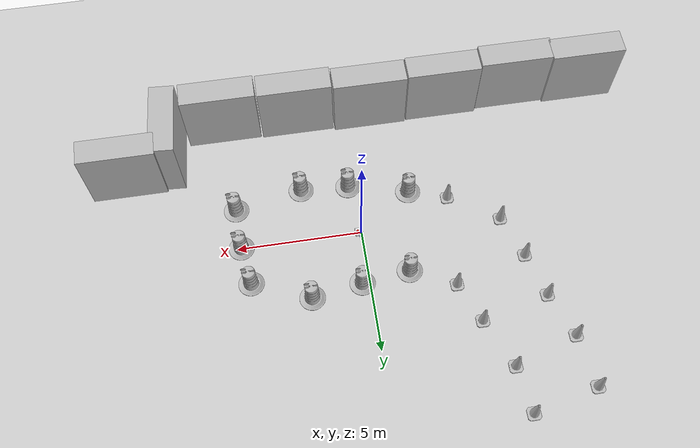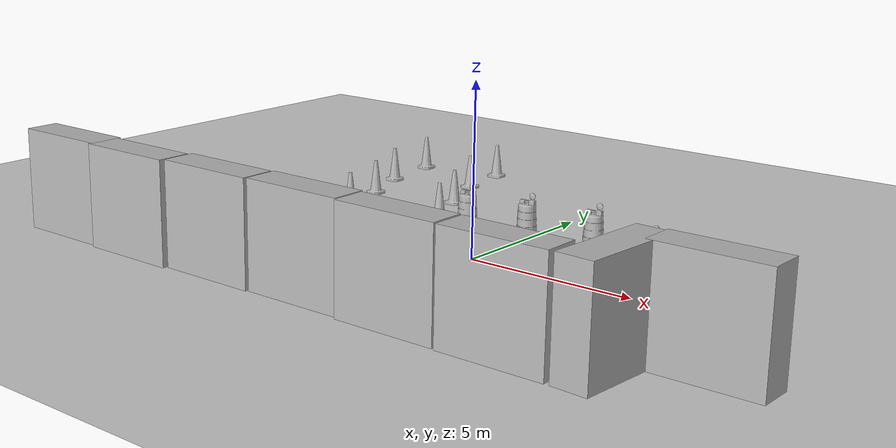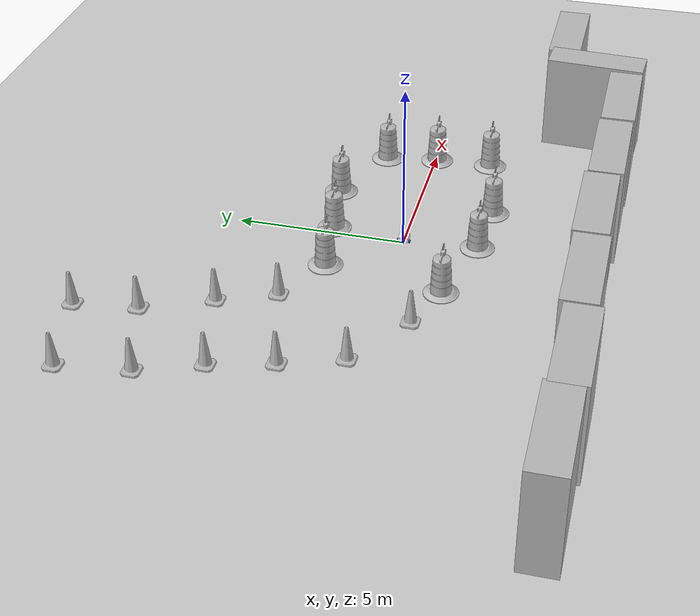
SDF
<sdf version="1.7">
 <world name="default">
  <light name="sun" type="directional">
   <pose>0 0 10 0 -0 0</pose>
   <diffuse>0.8 0.8 0.8 1</diffuse>
   <specular>0.2 0.2 0.2 1</specular>
   <attenuation>
    <range>1000</range>
    <constant>0.9</constant>
    <linear>0.01</linear>
    <quadratic>0.001</quadratic>
   </attenuation>
   <direction>-0.5 0.1 -0.9</direction>
   <spot><inner_angle>0</inner_angle><outer_angle>0</outer_angle><falloff>0</falloff></spot>
  </light>
  <model name="ground_plane">
   <static>1</static>
   <link name="link">
    <collision name="collision">
     <geometry><plane><normal>0 0 1</normal><size>100 100</size></plane></geometry>
     <surface>
      <contact><collide_bitmask>65535</collide_bitmask></contact>
      <friction><ode><mu>100</mu><mu2>50</mu2></ode></friction>
     </surface>
    </collision>
    <visual name="visual">
     <cast_shadows>0</cast_shadows>
     <geometry><plane><normal>0 0 1</normal><size>100 100</size></plane></geometry>
     <material>
      <script><uri>file://media/materials/scripts/gazebo.material</uri><name>Gazebo/Grey</name></script>
     </material>
    </visual>
   </link>
  </model>
  <gravity>0 0 -9.8</gravity>
  <magnetic_field>6e-06 2.3e-05 -4.2e-05</magnetic_field>
  <atmosphere type="adiabatic"/>
  <physics type="ode">
   <max_step_size>0.001</max_step_size>
   <real_time_factor>1</real_time_factor>
   <real_time_update_rate>1000</real_time_update_rate>
  </physics>
  <scene><ambient>0.4 0.4 0.4 1</ambient><background>0.7 0.7 0.7 1</background><shadows>1</shadows></scene>
  <audio><device>default</device></audio>
  <spherical_coordinates>
   <surface_model>EARTH_WGS84</surface_model>
   <latitude_deg>0</latitude_deg>
   <longitude_deg>0</longitude_deg>
   <elevation>0</elevation>
   <heading_deg>0</heading_deg>
  </spherical_coordinates>
  <model name="my_bot">
   <link name="base_link">
    <inertial>
     <pose>0.07 0 0.078571 0 -0 0</pose>
     <mass>0.7</mass>
     <inertia>
      <ixx>0.0064169</ixx>
      <ixy>0</ixy>
      <ixz>0.000225</ixz>
      <iyy>0.0071969</iyy>
      <iyz>0</iyz>
      <izz>0.008505</izz>
     </inertia>
    </inertial>
    <collision name="base_link_fixed_joint_lump__chassis_collision">
     <pose>0.05 0 0.075 0 -0 0</pose>
     <geometry><box><size>0.3 0.3 0.15</size></box></geometry>
    </collision>
    <collision name="base_link_fixed_joint_lump__caster_wheel_collision_1">
     <pose>0.14 0 0 0 -0 0</pose>
     <geometry><sphere><radius>0.05</radius></sphere></geometry>
     <surface><friction><ode><mu>0.001</mu><mu2>0.001</mu2></ode></friction></surface>
    </collision>
    <collision name="base_link_fixed_joint_lump__lidar_frame_collision_2">
     <pose>0.1 0 0.175 0 -0 0</pose>
     <geometry><cylinder><length>0.04</length><radius>0.05</radius></cylinder></geometry>
    </collision>
    <visual name="base_link_fixed_joint_lump__camera_link_visual">
     <pose>0.305 0 0.08 0 -0 0</pose>
     <geometry><box><size>0.01 0.03 0.03</size></box></geometry>
     <material>
      <script><name>Gazebo/Red</name><uri>file://media/materials/scripts/gazebo.material</uri></script>
     </material>
    </visual>
    <visual name="base_link_fixed_joint_lump__chassis_visual_1">
     <pose>0.05 0 0.075 0 -0 0</pose>
     <geometry><box><size>0.3 0.3 0.15</size></box></geometry>
     <material>
      <script><name>Gazebo/White</name><uri>file://media/materials/scripts/gazebo.material</uri></script>
     </material>
    </visual>
    <visual name="base_link_fixed_joint_lump__caster_wheel_visual_2">
     <pose>0.14 0 0 0 -0 0</pose>
     <geometry><sphere><radius>0.05</radius></sphere></geometry>
     <material>
      <script><name>Gazebo/Black</name><uri>file://media/materials/scripts/gazebo.material</uri></script>
     </material>
    </visual>
    <visual name="base_link_fixed_joint_lump__lidar_frame_visual_3">
     <pose>0.1 0 0.175 0 -0 0</pose>
     <geometry><cylinder><length>0.04</length><radius>0.05</radius></cylinder></geometry>
     <material>
      <script><name>Gazebo/Red</name><uri>file://media/materials/scripts/gazebo.material</uri></script>
     </material>
    </visual>
    <sensor name="camera" type="camera">
     <visualize>1</visualize>
     <update_rate>10</update_rate>
     <camera>
      <horizontal_fov>1.089</horizontal_fov>
      <image><format>R8G8B8</format><width>640</width><height>480</height></image>
      <clip><near>0.05</near><far>8</far></clip>
     </camera>
     <plugin name="camera_controller" filename="libgazebo_ros_camera.so">
      <frame_name>camera_link_optical</frame_name>
     </plugin>
     <pose>0.305 0 0.08 0 -0 0</pose>
    </sensor>
    <sensor name="laser" type="ray">
     <visualize>1</visualize>
     <update_rate>10</update_rate>
     <ray>
      <scan>
       <horizontal>
        <samples>360</samples>
        <resolution>1</resolution>
        <min_angle>-3.14159</min_angle>
        <max_angle>3.14159</max_angle>
       </horizontal>
       <vertical><samples>1</samples><min_angle>0</min_angle><max_angle>0</max_angle></vertical>
      </scan>
      <range><min>0.15</min><max>12</max><resolution>0.03</resolution></range>
     </ray>
     <plugin name="laser_controller" filename="libgazebo_ros_ray_sensor.so">
      <ros>
       <namespace>/</namespace>
       <remapping>~/out:=scan</remapping>
       <qos><reliability>best_effort</reliability><history>keep_last</history><depth>5</depth></qos>
      </ros>
      <output_type>sensor_msgs/LaserScan</output_type>
      <frame_name>lidar_frame</frame_name>
     </plugin>
     <pose>0.1 0 0.175 0 -0 0</pose>
    </sensor>
   </link>
   <joint name="left_wheel_joint" type="revolute">
    <pose relative_to="base_link">0 0.175 0 -1.5708 0 0</pose>
    <parent>base_link</parent>
    <child>left_wheel</child>
    <axis>
     <xyz>0 0 1</xyz>
     <limit><lower>-1e+16</lower><upper>1e+16</upper></limit>
     <dynamics><spring_reference>0</spring_reference><spring_stiffness>0</spring_stiffness></dynamics>
    </axis>
   </joint>
   <link name="left_wheel">
    <pose relative_to="left_wheel_joint">0 0 0 0 -0 0</pose>
    <inertial>
     <mass>0.1</mass>
     <inertia>
      <ixx>7.58333e-05</ixx>
      <ixy>0</ixy>
      <ixz>0</ixz>
      <iyy>7.58333e-05</iyy>
      <iyz>0</iyz>
      <izz>0.000125</izz>
     </inertia>
    </inertial>
    <collision name="left_wheel_collision">
     <geometry><cylinder><length>0.04</length><radius>0.05</radius></cylinder></geometry>
    </collision>
    <visual name="left_wheel_visual">
     <geometry><cylinder><length>0.04</length><radius>0.05</radius></cylinder></geometry>
     <material>
      <script><name>Gazebo/Blue</name><uri>file://media/materials/scripts/gazebo.material</uri></script>
     </material>
    </visual>
   </link>
   <joint name="right_wheel_joint" type="revolute">
    <pose relative_to="base_link">0 -0.175 0 1.5708 -0 0</pose>
    <parent>base_link</parent>
    <child>right_wheel</child>
    <axis>
     <xyz>0 0 -1</xyz>
     <limit><lower>-1e+16</lower><upper>1e+16</upper></limit>
     <dynamics><spring_reference>0</spring_reference><spring_stiffness>0</spring_stiffness></dynamics>
    </axis>
   </joint>
   <link name="right_wheel">
    <pose relative_to="right_wheel_joint">0 0 0 0 -0 0</pose>
    <inertial>
     <mass>0.1</mass>
     <inertia>
      <ixx>7.58333e-05</ixx>
      <ixy>0</ixy>
      <ixz>0</ixz>
      <iyy>7.58333e-05</iyy>
      <iyz>0</iyz>
      <izz>0.000125</izz>
     </inertia>
    </inertial>
    <collision name="right_wheel_collision">
     <geometry><cylinder><length>0.04</length><radius>0.05</radius></cylinder></geometry>
    </collision>
    <visual name="right_wheel_visual">
     <geometry><cylinder><length>0.04</length><radius>0.05</radius></cylinder></geometry>
     <material>
      <script><name>Gazebo/Blue</name><uri>file://media/materials/scripts/gazebo.material</uri></script>
     </material>
    </visual>
   </link>
   <static>0</static>
   <plugin name="diff_drive" filename="libgazebo_ros_diff_drive.so">
    <update_rate>50</update_rate>
    <command_topic>cmd_vel</command_topic>
    <publish_rate>50</publish_rate>
    <left_joint>left_wheel_joint</left_joint>
    <right_joint>right_wheel_joint</right_joint>
    <wheel_separation>0.3</wheel_separation>
    <wheel_diameter>0.1</wheel_diameter>
    <max_wheel_torque>200</max_wheel_torque>
    <max_wheel_acceleration>10.0</max_wheel_acceleration>
    <odometry_frame>odom</odometry_frame>
    <robot_base_frame>base_link</robot_base_frame>
    <publish_odom>1</publish_odom>
    <publish_odom_tf>1</publish_odom_tf>
    <publish_wheel_tf>1</publish_wheel_tf>
    <ros><use_sim_time>1</use_sim_time></ros>
   </plugin>
   <pose>0.046123 0.000226 0.05 0 1e-06 0.003135</pose>
  </model>
  <model name="brick_box_3x1x3">
   <static>1</static>
   <link name="chassis">
    <pose>0 0 1.5 0 -0 0</pose>
    <collision name="collision"><geometry><box><size>3 1 3</size></box></geometry></collision>
    <visual name="visual">
     <geometry><mesh><uri>model://brick_box_3x1x3/meshes/simple_box.dae</uri><scale>3 1 3</scale></mesh></geometry>
     <material>
      <script>
       <uri>model://brick_box_3x1x3/materials/scripts</uri>
       <uri>model://brick_box_3x1x3/materials/textures</uri>
       <name>BrickBox/Diffuse</name>
      </script>
     </material>
    </visual>
   </link>
   <pose>7.21509 -4.67088 0 0 -0 1.50785</pose>
  </model>
  <model name="brick_box_3x1x3_clone">
   <static>1</static>
   <link name="chassis">
    <pose>0 0 1.5 0 -0 0</pose>
    <collision name="collision"><geometry><box><size>3 1 3</size></box></geometry></collision>
    <visual name="visual">
     <geometry><mesh><uri>model://brick_box_3x1x3/meshes/simple_box.dae</uri><scale>3 1 3</scale></mesh></geometry>
     <material>
      <script>
       <uri>model://brick_box_3x1x3/materials/scripts</uri>
       <uri>model://brick_box_3x1x3/materials/textures</uri>
       <name>BrickBox/Diffuse</name>
      </script>
     </material>
    </visual>
   </link>
   <pose>9.05278 -3.57331 0 0 -0 0</pose>
  </model>
  <model name="brick_box_3x1x3_clone_clone">
   <static>1</static>
   <link name="chassis">
    <pose>0 0 1.5 0 -0 0</pose>
    <collision name="collision"><geometry><box><size>3 1 3</size></box></geometry></collision>
    <visual name="visual">
     <geometry><mesh><uri>model://brick_box_3x1x3/meshes/simple_box.dae</uri><scale>3 1 3</scale></mesh></geometry>
     <material>
      <script>
       <uri>model://brick_box_3x1x3/materials/scripts</uri>
       <uri>model://brick_box_3x1x3/materials/textures</uri>
       <name>BrickBox/Diffuse</name>
      </script>
     </material>
    </visual>
   </link>
   <pose>4.99343 -5.64585 0 0 -0 0</pose>
  </model>
  <model name="brick_box_3x1x3_clone_clone_0">
   <static>1</static>
   <link name="chassis">
    <pose>0 0 1.5 0 -0 0</pose>
    <collision name="collision"><geometry><box><size>3 1 3</size></box></geometry></collision>
    <visual name="visual">
     <geometry><mesh><uri>model://brick_box_3x1x3/meshes/simple_box.dae</uri><scale>3 1 3</scale></mesh></geometry>
     <material>
      <script>
       <uri>model://brick_box_3x1x3/materials/scripts</uri>
       <uri>model://brick_box_3x1x3/materials/textures</uri>
       <name>BrickBox/Diffuse</name>
      </script>
     </material>
    </visual>
   </link>
   <pose>1.91301 -5.60802 0 0 -0 0</pose>
  </model>
  <model name="brick_box_3x1x3_clone_clone_1">
   <static>1</static>
   <link name="chassis">
    <pose>0 0 1.5 0 -0 0</pose>
    <collision name="collision"><geometry><box><size>3 1 3</size></box></geometry></collision>
    <visual name="visual">
     <geometry><mesh><uri>model://brick_box_3x1x3/meshes/simple_box.dae</uri><scale>3 1 3</scale></mesh></geometry>
     <material>
      <script>
       <uri>model://brick_box_3x1x3/materials/scripts</uri>
       <uri>model://brick_box_3x1x3/materials/textures</uri>
       <name>BrickBox/Diffuse</name>
      </script>
     </material>
    </visual>
   </link>
   <pose>-1.14226 -5.51447 0 0 -0 0</pose>
  </model>
  <model name="brick_box_3x1x3_clone_clone_2">
   <static>1</static>
   <link name="chassis">
    <pose>0 0 1.5 0 -0 0</pose>
    <collision name="collision"><geometry><box><size>3 1 3</size></box></geometry></collision>
    <visual name="visual">
     <geometry><mesh><uri>model://brick_box_3x1x3/meshes/simple_box.dae</uri><scale>3 1 3</scale></mesh></geometry>
     <material>
      <script>
       <uri>model://brick_box_3x1x3/materials/scripts</uri>
       <uri>model://brick_box_3x1x3/materials/textures</uri>
       <name>BrickBox/Diffuse</name>
      </script>
     </material>
    </visual>
   </link>
   <pose>-4.19939 -5.56882 0 0 -0 0</pose>
  </model>
  <model name="brick_box_3x1x3_clone_clone_3">
   <static>1</static>
   <link name="chassis">
    <pose>0 0 1.5 0 -0 0</pose>
    <collision name="collision"><geometry><box><size>3 1 3</size></box></geometry></collision>
    <visual name="visual">
     <geometry><mesh><uri>model://brick_box_3x1x3/meshes/simple_box.dae</uri><scale>3 1 3</scale></mesh></geometry>
     <material>
      <script>
       <uri>model://brick_box_3x1x3/materials/scripts</uri>
       <uri>model://brick_box_3x1x3/materials/textures</uri>
       <name>BrickBox/Diffuse</name>
      </script>
     </material>
    </visual>
   </link>
   <pose>-7.25472 -5.69282 0 0 -0 0</pose>
  </model>
  <model name="brick_box_3x1x3_clone_clone_4">
   <static>1</static>
   <link name="chassis">
    <pose>0 0 1.5 0 -0 0</pose>
    <collision name="collision"><geometry><box><size>3 1 3</size></box></geometry></collision>
    <visual name="visual">
     <geometry><mesh><uri>model://brick_box_3x1x3/meshes/simple_box.dae</uri><scale>3 1 3</scale></mesh></geometry>
     <material>
      <script>
       <uri>model://brick_box_3x1x3/materials/scripts</uri>
       <uri>model://brick_box_3x1x3/materials/textures</uri>
       <name>BrickBox/Diffuse</name>
      </script>
     </material>
    </visual>
   </link>
   <pose>-10.1928 -5.59837 0 0 -0 0</pose>
  </model>
  <model name="Construction Barrel">
   <link name="link">
    <inertial>
     <pose>0 0 0.4 0 -0 0</pose>
     <mass>500</mass>
     <inertia><ixx>51.2096</ixx><iyy>51.2096</iyy><izz>25</izz><ixy>0</ixy><ixz>0</ixz><iyz>0</iyz></inertia>
    </inertial>
    <collision name="collision">
     <geometry><mesh><uri>model://construction_barrel/meshes/construction_barrel.dae</uri></mesh></geometry>
    </collision>
    <visual name="visual">
     <geometry><mesh><uri>model://construction_barrel/meshes/construction_barrel.dae</uri></mesh></geometry>
    </visual>
   </link>
   <pose>4.57876 1.53926 -1e-06 -3e-06 -1e-06 -3.3e-05</pose>
  </model>
  <model name="Construction Barrel_clone">
   <link name="link">
    <inertial>
     <pose>0 0 0.4 0 -0 0</pose>
     <mass>500</mass>
     <inertia><ixx>51.2096</ixx><iyy>51.2096</iyy><izz>25</izz><ixy>0</ixy><ixz>0</ixz><iyz>0</iyz></inertia>
    </inertial>
    <collision name="collision">
     <geometry><mesh><uri>model://construction_barrel/meshes/construction_barrel.dae</uri></mesh></geometry>
    </collision>
    <visual name="visual">
     <geometry><mesh><uri>model://construction_barrel/meshes/construction_barrel.dae</uri></mesh></geometry>
    </visual>
   </link>
   <pose>4.81534 -0.03261 -2e-06 -5e-06 -4e-06 -2.7e-05</pose>
  </model>
  <model name="Construction Barrel_clone_0">
   <link name="link">
    <inertial>
     <pose>0 0 0.4 0 -0 0</pose>
     <mass>500</mass>
     <inertia><ixx>51.2096</ixx><iyy>51.2096</iyy><izz>25</izz><ixy>0</ixy><ixz>0</ixz><iyz>0</iyz></inertia>
    </inertial>
    <collision name="collision">
     <geometry><mesh><uri>model://construction_barrel/meshes/construction_barrel.dae</uri></mesh></geometry>
    </collision>
    <visual name="visual">
     <geometry><mesh><uri>model://construction_barrel/meshes/construction_barrel.dae</uri></mesh></geometry>
    </visual>
   </link>
   <pose>4.86681 -1.74802 -2e-06 -5e-06 -4e-06 -2.6e-05</pose>
  </model>
  <model name="Construction Barrel_clone_1">
   <link name="link">
    <inertial>
     <pose>0 0 0.4 0 -0 0</pose>
     <mass>500</mass>
     <inertia><ixx>51.2096</ixx><iyy>51.2096</iyy><izz>25</izz><ixy>0</ixy><ixz>0</ixz><iyz>0</iyz></inertia>
    </inertial>
    <collision name="collision">
     <geometry><mesh><uri>model://construction_barrel/meshes/construction_barrel.dae</uri></mesh></geometry>
    </collision>
    <visual name="visual">
     <geometry><mesh><uri>model://construction_barrel/meshes/construction_barrel.dae</uri></mesh></geometry>
    </visual>
   </link>
   <pose>2.3011 2.49231 -2e-06 -5e-06 -4e-06 -2.4e-05</pose>
  </model>
  <model name="Construction Barrel_clone_2">
   <link name="link">
    <inertial>
     <pose>0 0 0.4 0 -0 0</pose>
     <mass>500</mass>
     <inertia><ixx>51.2096</ixx><iyy>51.2096</iyy><izz>25</izz><ixy>0</ixy><ixz>0</ixz><iyz>0</iyz></inertia>
    </inertial>
    <collision name="collision">
     <geometry><mesh><uri>model://construction_barrel/meshes/construction_barrel.dae</uri></mesh></geometry>
    </collision>
    <visual name="visual">
     <geometry><mesh><uri>model://construction_barrel/meshes/construction_barrel.dae</uri></mesh></geometry>
    </visual>
   </link>
   <pose>0.296456 2.1703 -2e-06 -5e-06 -4e-06 -2.3e-05</pose>
  </model>
  <model name="Construction Barrel_clone_3">
   <link name="link">
    <inertial>
     <pose>0 0 0.4 0 -0 0</pose>
     <mass>500</mass>
     <inertia><ixx>51.2096</ixx><iyy>51.2096</iyy><izz>25</izz><ixy>0</ixy><ixz>0</ixz><iyz>0</iyz></inertia>
    </inertial>
    <collision name="collision">
     <geometry><mesh><uri>model://construction_barrel/meshes/construction_barrel.dae</uri></mesh></geometry>
    </collision>
    <visual name="visual">
     <geometry><mesh><uri>model://construction_barrel/meshes/construction_barrel.dae</uri></mesh></geometry>
    </visual>
   </link>
   <pose>-1.61721 1.92177 -2e-06 -5e-06 -4e-06 -2.2e-05</pose>
  </model>
  <model name="Construction Barrel_clone_4">
   <link name="link">
    <inertial>
     <pose>0 0 0.4 0 -0 0</pose>
     <mass>500</mass>
     <inertia><ixx>51.2096</ixx><iyy>51.2096</iyy><izz>25</izz><ixy>0</ixy><ixz>0</ixz><iyz>0</iyz></inertia>
    </inertial>
    <collision name="collision">
     <geometry><mesh><uri>model://construction_barrel/meshes/construction_barrel.dae</uri></mesh></geometry>
    </collision>
    <visual name="visual">
     <geometry><mesh><uri>model://construction_barrel/meshes/construction_barrel.dae</uri></mesh></geometry>
    </visual>
   </link>
   <pose>2.15801 -2.28209 -2e-06 -5e-06 -4e-06 -2.1e-05</pose>
  </model>
  <model name="Construction Barrel_clone_5">
   <link name="link">
    <inertial>
     <pose>0 0 0.4 0 -0 0</pose>
     <mass>500</mass>
     <inertia><ixx>51.2096</ixx><iyy>51.2096</iyy><izz>25</izz><ixy>0</ixy><ixz>0</ixz><iyz>0</iyz></inertia>
    </inertial>
    <collision name="collision">
     <geometry><mesh><uri>model://construction_barrel/meshes/construction_barrel.dae</uri></mesh></geometry>
    </collision>
    <visual name="visual">
     <geometry><mesh><uri>model://construction_barrel/meshes/construction_barrel.dae</uri></mesh></geometry>
    </visual>
   </link>
   <pose>0.233434 -2.16431 1e-06 1e-06 1e-06 -2.1e-05</pose>
  </model>
  <model name="Construction Barrel_clone_6">
   <link name="link">
    <inertial>
     <pose>0 0 0.4 0 -0 0</pose>
     <mass>500</mass>
     <inertia><ixx>51.2096</ixx><iyy>51.2096</iyy><izz>25</izz><ixy>0</ixy><ixz>0</ixz><iyz>0</iyz></inertia>
    </inertial>
    <collision name="collision">
     <geometry><mesh><uri>model://construction_barrel/meshes/construction_barrel.dae</uri></mesh></geometry>
    </collision>
    <visual name="visual">
     <geometry><mesh><uri>model://construction_barrel/meshes/construction_barrel.dae</uri></mesh></geometry>
    </visual>
   </link>
   <pose>-2.16136 -1.56364 -0 0 0 -1.9e-05</pose>
  </model>
  <model name="Construction Cone">
   <link name="link">
    <collision name="collision">
     <geometry>
      <mesh><scale>10 10 10</scale><uri>model://construction_cone/meshes/construction_cone.dae</uri></mesh>
     </geometry>
    </collision>
    <visual name="visual">
     <geometry>
      <mesh><scale>10 10 10</scale><uri>model://construction_cone/meshes/construction_cone.dae</uri></mesh>
     </geometry>
    </visual>
    <inertial>
     <inertia><ixx>1</ixx><ixy>0</ixy><ixz>0</ixz><iyy>1</iyy><iyz>0</iyz><izz>1</izz></inertia>
     <mass>1</mass>
    </inertial>
   </link>
   <pose>-3.33142 2.79783 -0 0 -0 0</pose>
  </model>
  <model name="Construction Cone_clone">
   <link name="link">
    <collision name="collision">
     <geometry>
      <mesh><scale>10 10 10</scale><uri>model://construction_cone/meshes/construction_cone.dae</uri></mesh>
     </geometry>
    </collision>
    <visual name="visual">
     <geometry>
      <mesh><scale>10 10 10</scale><uri>model://construction_cone/meshes/construction_cone.dae</uri></mesh>
     </geometry>
    </visual>
    <inertial>
     <inertia><ixx>1</ixx><ixy>0</ixy><ixz>0</ixz><iyy>1</iyy><iyz>0</iyz><izz>1</izz></inertia>
     <mass>1</mass>
    </inertial>
   </link>
   <pose>-3.99758 4.41278 -0 0 -0 0</pose>
  </model>
  <model name="Construction Cone_clone_0">
   <link name="link">
    <collision name="collision">
     <geometry>
      <mesh><scale>10 10 10</scale><uri>model://construction_cone/meshes/construction_cone.dae</uri></mesh>
     </geometry>
    </collision>
    <visual name="visual">
     <geometry>
      <mesh><scale>10 10 10</scale><uri>model://construction_cone/meshes/construction_cone.dae</uri></mesh>
     </geometry>
    </visual>
    <inertial>
     <inertia><ixx>1</ixx><ixy>0</ixy><ixz>0</ixz><iyy>1</iyy><iyz>0</iyz><izz>1</izz></inertia>
     <mass>1</mass>
    </inertial>
   </link>
   <pose>-3.69466 -1.03339 -0 0 -1e-06 0</pose>
  </model>
  <model name="Construction Cone_clone_1">
   <link name="link">
    <collision name="collision">
     <geometry>
      <mesh><scale>10 10 10</scale><uri>model://construction_cone/meshes/construction_cone.dae</uri></mesh>
     </geometry>
    </collision>
    <visual name="visual">
     <geometry>
      <mesh><scale>10 10 10</scale><uri>model://construction_cone/meshes/construction_cone.dae</uri></mesh>
     </geometry>
    </visual>
    <inertial>
     <inertia><ixx>1</ixx><ixy>0</ixy><ixz>0</ixz><iyy>1</iyy><iyz>0</iyz><izz>1</izz></inertia>
     <mass>1</mass>
    </inertial>
   </link>
   <pose>-5.62374 0.235464 -0 1e-06 -0 0</pose>
  </model>
  <model name="Construction Cone_clone_2">
   <link name="link">
    <collision name="collision">
     <geometry>
      <mesh><scale>10 10 10</scale><uri>model://construction_cone/meshes/construction_cone.dae</uri></mesh>
     </geometry>
    </collision>
    <visual name="visual">
     <geometry>
      <mesh><scale>10 10 10</scale><uri>model://construction_cone/meshes/construction_cone.dae</uri></mesh>
     </geometry>
    </visual>
    <inertial>
     <inertia><ixx>1</ixx><ixy>0</ixy><ixz>0</ixz><iyy>1</iyy><iyz>0</iyz><izz>1</izz></inertia>
     <mass>1</mass>
    </inertial>
   </link>
   <pose>-6.223 1.96869 -0 0 -1e-06 0</pose>
  </model>
  <model name="Construction Cone_clone_3">
   <link name="link">
    <collision name="collision">
     <geometry>
      <mesh><scale>10 10 10</scale><uri>model://construction_cone/meshes/construction_cone.dae</uri></mesh>
     </geometry>
    </collision>
    <visual name="visual">
     <geometry>
      <mesh><scale>10 10 10</scale><uri>model://construction_cone/meshes/construction_cone.dae</uri></mesh>
     </geometry>
    </visual>
    <inertial>
     <inertia><ixx>1</ixx><ixy>0</ixy><ixz>0</ixz><iyy>1</iyy><iyz>0</iyz><izz>1</izz></inertia>
     <mass>1</mass>
    </inertial>
   </link>
   <pose>-6.69433 3.74985 -1e-06 2e-06 2e-06 0</pose>
  </model>
  <model name="Construction Cone_clone_4">
   <link name="link">
    <collision name="collision">
     <geometry>
      <mesh><scale>10 10 10</scale><uri>model://construction_cone/meshes/construction_cone.dae</uri></mesh>
     </geometry>
    </collision>
    <visual name="visual">
     <geometry>
      <mesh><scale>10 10 10</scale><uri>model://construction_cone/meshes/construction_cone.dae</uri></mesh>
     </geometry>
    </visual>
    <inertial>
     <inertia><ixx>1</ixx><ixy>0</ixy><ixz>0</ixz><iyy>1</iyy><iyz>0</iyz><izz>1</izz></inertia>
     <mass>1</mass>
    </inertial>
   </link>
   <pose>-4.82472 6.35472 -1e-05 -0 -0 -0</pose>
  </model>
  <model name="Construction Cone_clone_5">
   <link name="link">
    <collision name="collision">
     <geometry>
      <mesh><scale>10 10 10</scale><uri>model://construction_cone/meshes/construction_cone.dae</uri></mesh>
     </geometry>
    </collision>
    <visual name="visual">
     <geometry>
      <mesh><scale>10 10 10</scale><uri>model://construction_cone/meshes/construction_cone.dae</uri></mesh>
     </geometry>
    </visual>
    <inertial>
     <inertia><ixx>1</ixx><ixy>0</ixy><ixz>0</ixz><iyy>1</iyy><iyz>0</iyz><izz>1</izz></inertia>
     <mass>1</mass>
    </inertial>
   </link>
   <pose>-7.36219 5.51596 -0 0 -0 0</pose>
  </model>
  <model name="Construction Cone_clone_6">
   <link name="link">
    <collision name="collision">
     <geometry>
      <mesh><scale>10 10 10</scale><uri>model://construction_cone/meshes/construction_cone.dae</uri></mesh>
     </geometry>
    </collision>
    <visual name="visual">
     <geometry>
      <mesh><scale>10 10 10</scale><uri>model://construction_cone/meshes/construction_cone.dae</uri></mesh>
     </geometry>
    </visual>
    <inertial>
     <inertia><ixx>1</ixx><ixy>0</ixy><ixz>0</ixz><iyy>1</iyy><iyz>0</iyz><izz>1</izz></inertia>
     <mass>1</mass>
    </inertial>
   </link>
   <pose>-7.64296 7.57602 -0 0 -1e-06 0</pose>
  </model>
  <model name="Construction Cone_clone_7">
   <link name="link">
    <collision name="collision">
     <geometry>
      <mesh><scale>10 10 10</scale><uri>model://construction_cone/meshes/construction_cone.dae</uri></mesh>
     </geometry>
    </collision>
    <visual name="visual">
     <geometry>
      <mesh><scale>10 10 10</scale><uri>model://construction_cone/meshes/construction_cone.dae</uri></mesh>
     </geometry>
    </visual>
    <inertial>
     <inertia><ixx>1</ixx><ixy>0</ixy><ixz>0</ixz><iyy>1</iyy><iyz>0</iyz><izz>1</izz></inertia>
     <mass>1</mass>
    </inertial>
   </link>
   <pose>-5.0676 8.19077 -0 0 -0 0</pose>
  </model>
 </world>
</sdf>
